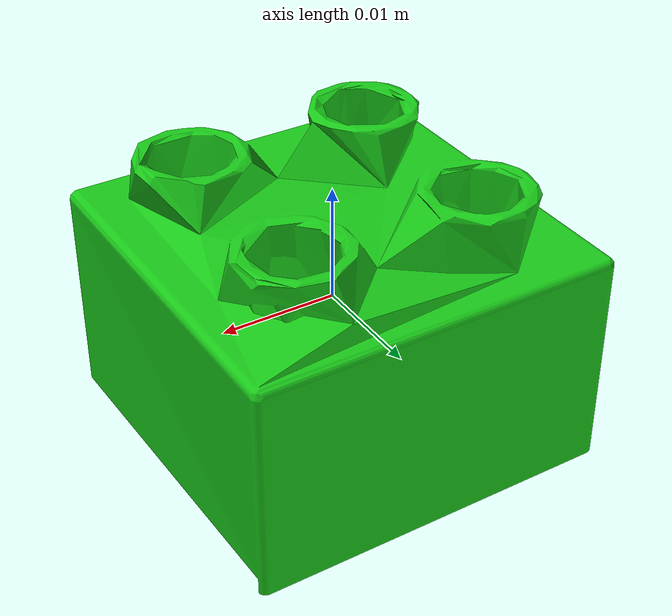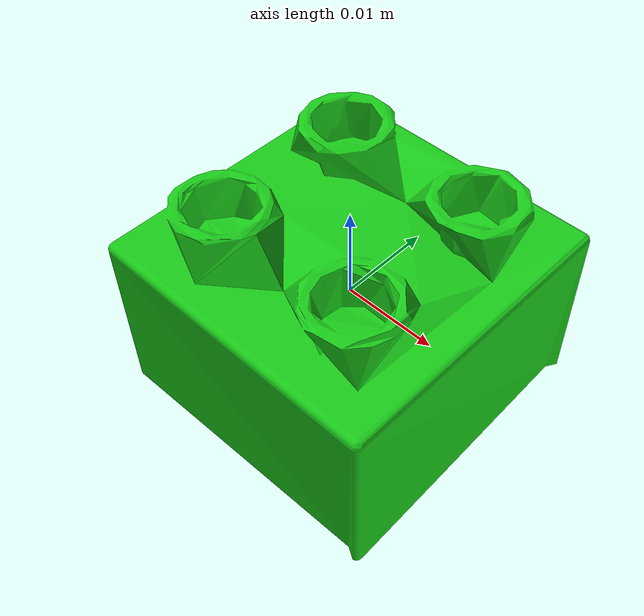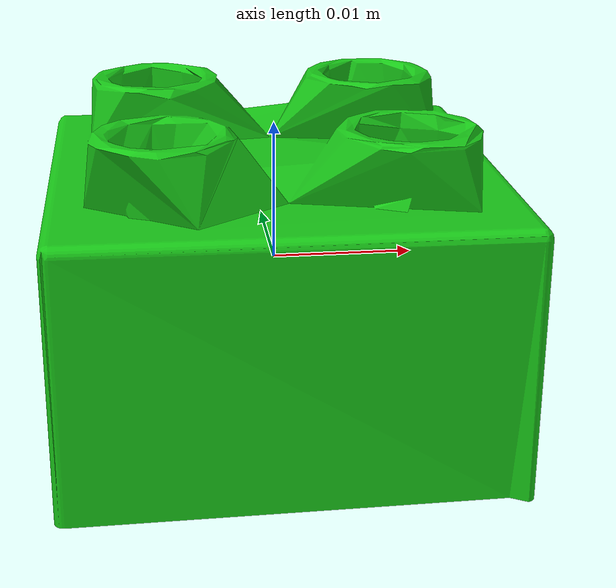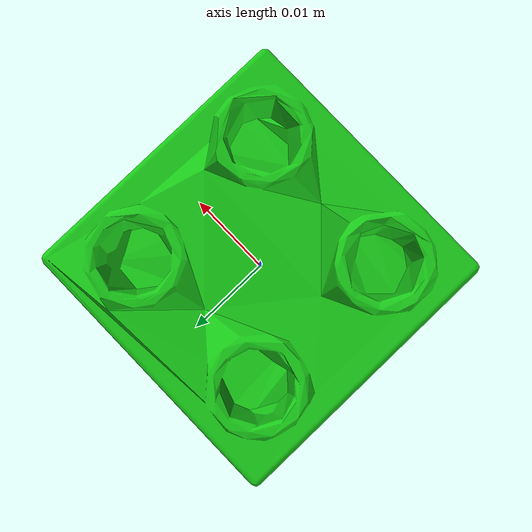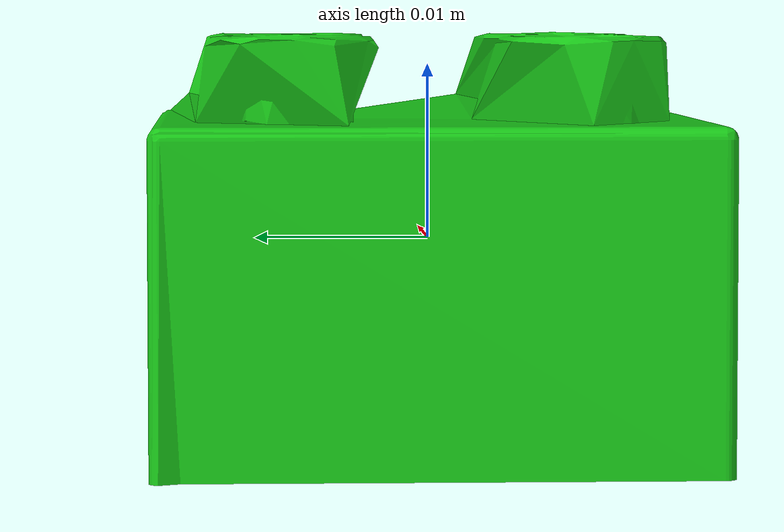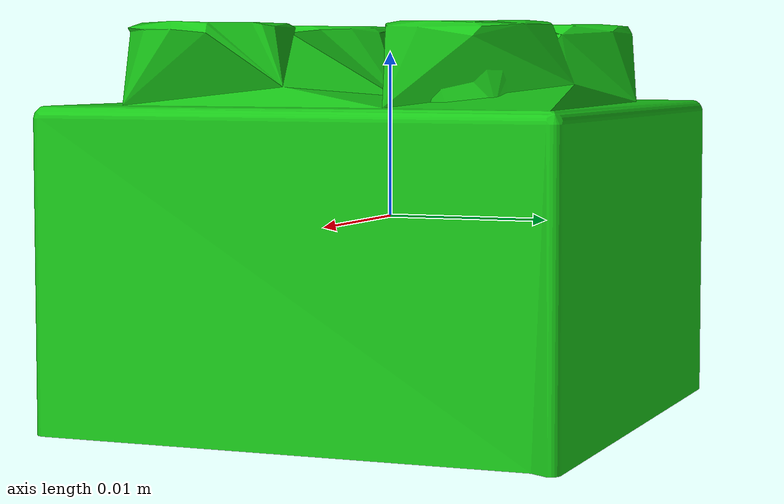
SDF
<?xml version="1.0"?>
<sdf version="1.9">
  <model name="s_bot_left_block_green">
    <link name="link">
      <inertial>
        <mass>0.005</mass>
        <inertia>
          <ixx>2.802e-6</ixx><iyy>2.912e-6</iyy><izz>3.631e-6</izz>
          <ixy>0</ixy><ixz>0</ixz><iyz>0</iyz>
        </inertia>
      </inertial>
      <collision name="collision">
        <geometry>
          <mesh><uri>model://meshes/2x2_base_simplified.obj</uri><scale>1 1 1</scale></mesh>
        </geometry>
      </collision>
      <visual name="visual">
        <geometry>
          <mesh><uri>model://meshes/2x2_base_simplified.obj</uri><scale>1 1 1</scale></mesh>
        </geometry>
        <material>
          <ambient>0.1 0.8 0.1 1</ambient>
          <diffuse>0.1 0.8 0.1 1</diffuse>
        </material>
      </visual>
    </link>
  </model>
</sdf>
